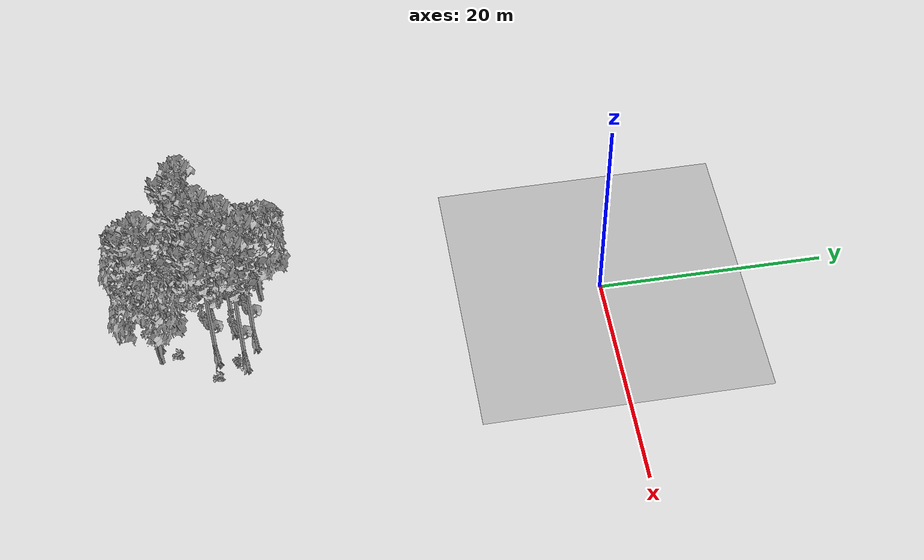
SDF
<sdf version="1.7">
 <world name="default">
  <model name="ground_plane">
   <static>1</static>
   <link name="link">
    <collision name="collision">
     <pose>-50 0 0 0 -0 0</pose>
     <geometry><plane><normal>0 0 1</normal><size>80 80</size></plane></geometry>
     <surface><contact><ode><min_depth>0.01</min_depth><max_vel>0</max_vel></ode></contact></surface>
    </collision>
    <visual name="grass">
     <cast_shadows>0</cast_shadows>
     <geometry>
      <mesh>
       <scale>0.46714285714285714 0.46714285714285714 0.1</scale>
       <uri>file://grass_plane/meshes/grass_plane.dae</uri>
      </mesh>
     </geometry>
    </visual>
   </link>
  </model>
  <model name="Tree 138">
   <static>1</static>
   <pose>1.7943617229306597 -38.684852721936664 0 1.57079 -0 0</pose>
   <link name="link">
    <collision name="collision">
     <geometry><mesh><scale>3.5 5 3.5</scale><uri>model://tree_2/meshes/tree_2.obj</uri></mesh></geometry>
    </collision>
    <visual name="visual">
     <geometry><mesh><scale>3.5 5 3.5</scale><uri>model://tree_2/meshes/tree_2.obj</uri></mesh></geometry>
    </visual>
   </link>
  </model>
  <model name="Tree 186">
   <static>1</static>
   <pose>1.4371979365875873 -30.614723685565277 0 1.57079 -0 0</pose>
   <link name="link">
    <collision name="collision">
     <geometry><mesh><scale>3.5 5 3.5</scale><uri>model://tree_9/meshes/tree_9.obj</uri></mesh></geometry>
    </collision>
    <visual name="visual">
     <geometry><mesh><scale>3.5 5 3.5</scale><uri>model://tree_9/meshes/tree_9.obj</uri></mesh></geometry>
    </visual>
   </link>
  </model>
  <model name="Tree 195">
   <static>1</static>
   <pose>2.5169515517451586 -33.959013558697386 0 1.57079 -0 0</pose>
   <link name="link">
    <collision name="collision">
     <geometry><mesh><scale>3.5 5 3.5</scale><uri>model://tree_9/meshes/tree_9.obj</uri></mesh></geometry>
    </collision>
    <visual name="visual">
     <geometry><mesh><scale>3.5 5 3.5</scale><uri>model://tree_9/meshes/tree_9.obj</uri></mesh></geometry>
    </visual>
   </link>
  </model>
  <model name="Tree 231">
   <static>1</static>
   <pose>-3.1194249024123764 -38.041849336431824 0 1.57079 -0 0</pose>
   <link name="link">
    <collision name="collision">
     <geometry><mesh><scale>3.5 5 3.5</scale><uri>model://tree_2/meshes/tree_2.obj</uri></mesh></geometry>
    </collision>
    <visual name="visual">
     <geometry><mesh><scale>3.5 5 3.5</scale><uri>model://tree_2/meshes/tree_2.obj</uri></mesh></geometry>
    </visual>
   </link>
  </model>
  <model name="Tree 291">
   <static>1</static>
   <pose>-3.576647384000559 -29.745090943464454 0 1.57079 -0 0</pose>
   <link name="link">
    <collision name="collision">
     <geometry><mesh><scale>3.5 5 3.5</scale><uri>model://tree_2/meshes/tree_2.obj</uri></mesh></geometry>
    </collision>
    <visual name="visual">
     <geometry><mesh><scale>3.5 5 3.5</scale><uri>model://tree_2/meshes/tree_2.obj</uri></mesh></geometry>
    </visual>
   </link>
  </model>
  <model name="Tree 363">
   <static>1</static>
   <pose>3.5125473763168245 -31.584496098964205 0 1.57079 -0 0</pose>
   <link name="link">
    <collision name="collision">
     <geometry><mesh><scale>3.5 5 3.5</scale><uri>model://tree_9/meshes/tree_9.obj</uri></mesh></geometry>
    </collision>
    <visual name="visual">
     <geometry><mesh><scale>3.5 5 3.5</scale><uri>model://tree_9/meshes/tree_9.obj</uri></mesh></geometry>
    </visual>
   </link>
  </model>
  <model name="Tree 407">
   <static>1</static>
   <pose>0.25082782474779464 -38.77463887626775 0 1.57079 -0 0</pose>
   <link name="link">
    <collision name="collision">
     <geometry><mesh><scale>3.5 5 3.5</scale><uri>model://tree_9/meshes/tree_9.obj</uri></mesh></geometry>
    </collision>
    <visual name="visual">
     <geometry><mesh><scale>3.5 5 3.5</scale><uri>model://tree_9/meshes/tree_9.obj</uri></mesh></geometry>
    </visual>
   </link>
  </model>
  <model name="Tree 412">
   <static>1</static>
   <pose>-0.38117350159099317 -32.30412741928206 0 1.57079 -0 0</pose>
   <link name="link">
    <collision name="collision">
     <geometry><mesh><scale>3.5 5 3.5</scale><uri>model://tree_9/meshes/tree_9.obj</uri></mesh></geometry>
    </collision>
    <visual name="visual">
     <geometry><mesh><scale>3.5 5 3.5</scale><uri>model://tree_9/meshes/tree_9.obj</uri></mesh></geometry>
    </visual>
   </link>
  </model>
  <model name="Tree 455">
   <static>1</static>
   <pose>-3.2909827842340107 -39.282722049232376 0 1.57079 -0 0</pose>
   <link name="link">
    <collision name="collision">
     <geometry><mesh><scale>3.5 5 3.5</scale><uri>model://tree_2/meshes/tree_2.obj</uri></mesh></geometry>
    </collision>
    <visual name="visual">
     <geometry><mesh><scale>3.5 5 3.5</scale><uri>model://tree_2/meshes/tree_2.obj</uri></mesh></geometry>
    </visual>
   </link>
  </model>
  <model name="Tree 476">
   <static>1</static>
   <pose>-1.7045935388941942 -34.08110922287391 0 1.57079 -0 0</pose>
   <link name="link">
    <collision name="collision">
     <geometry><mesh><scale>3.5 5 3.5</scale><uri>model://tree_9/meshes/tree_9.obj</uri></mesh></geometry>
    </collision>
    <visual name="visual">
     <geometry><mesh><scale>3.5 5 3.5</scale><uri>model://tree_9/meshes/tree_9.obj</uri></mesh></geometry>
    </visual>
   </link>
  </model>
  <model name="Tree 548">
   <static>1</static>
   <pose>-3.480218419004686 -31.627936309444856 0 1.57079 -0 0</pose>
   <link name="link">
    <collision name="collision">
     <geometry><mesh><scale>3.5 5 3.5</scale><uri>model://tree_2/meshes/tree_2.obj</uri></mesh></geometry>
    </collision>
    <visual name="visual">
     <geometry><mesh><scale>3.5 5 3.5</scale><uri>model://tree_2/meshes/tree_2.obj</uri></mesh></geometry>
    </visual>
   </link>
  </model>
  <model name="Tree 603">
   <static>1</static>
   <pose>-5.125138345340609 -35.245219344497016 0 1.57079 -0 0</pose>
   <link name="link">
    <collision name="collision">
     <geometry><mesh><scale>3.5 5 3.5</scale><uri>model://tree_9/meshes/tree_9.obj</uri></mesh></geometry>
    </collision>
    <visual name="visual">
     <geometry><mesh><scale>3.5 5 3.5</scale><uri>model://tree_9/meshes/tree_9.obj</uri></mesh></geometry>
    </visual>
   </link>
  </model>
  <model name="Bush 20">
   <static>1</static>
   <pose>-5.391037884607108 -32.40212075155192 0 1.57079 -0 0</pose>
   <link name="link">
    <collision name="collision">
     <geometry><mesh><scale>2 2 2</scale><uri>model://bush_2/meshes/bush_2.obj</uri></mesh></geometry>
     <surface><contact><collide_without_contact>false</collide_without_contact></contact></surface>
    </collision>
    <visual name="visual">
     <geometry><mesh><scale>2 2 2</scale><uri>model://bush_2/meshes/bush_2.obj</uri></mesh></geometry>
    </visual>
   </link>
  </model>
  <model name="Bush 43">
   <static>1</static>
   <pose>4.136867577311904 -34.044890382032655 0 1.57079 -0 0</pose>
   <link name="link">
    <collision name="collision">
     <geometry><mesh><scale>2 2 2</scale><uri>model://bush_2/meshes/bush_2.obj</uri></mesh></geometry>
     <surface><contact><collide_without_contact>false</collide_without_contact></contact></surface>
    </collision>
    <visual name="visual">
     <geometry><mesh><scale>2 2 2</scale><uri>model://bush_2/meshes/bush_2.obj</uri></mesh></geometry>
    </visual>
   </link>
  </model>
  <model name="Bush 50">
   <static>1</static>
   <pose>1.2861811846438727 -37.29976834700458 0 1.57079 -0 0</pose>
   <link name="link">
    <collision name="collision">
     <geometry><mesh><scale>2 2 2</scale><uri>model://bush_2/meshes/bush_2.obj</uri></mesh></geometry>
     <surface><contact><collide_without_contact>false</collide_without_contact></contact></surface>
    </collision>
    <visual name="visual">
     <geometry><mesh><scale>2 2 2</scale><uri>model://bush_2/meshes/bush_2.obj</uri></mesh></geometry>
    </visual>
   </link>
  </model>
  <model name="Bush 67">
   <static>1</static>
   <pose>-5.08326398577767 -29.90954772202448 0 1.57079 -0 0</pose>
   <link name="link">
    <collision name="collision">
     <geometry><mesh><scale>2 2 2</scale><uri>model://bush_2/meshes/bush_2.obj</uri></mesh></geometry>
     <surface><contact><collide_without_contact>false</collide_without_contact></contact></surface>
    </collision>
    <visual name="visual">
     <geometry><mesh><scale>2 2 2</scale><uri>model://bush_2/meshes/bush_2.obj</uri></mesh></geometry>
    </visual>
   </link>
  </model>
  <model name="Bush 185">
   <static>1</static>
   <pose>-0.4148620533965399 -39.40769959942166 0 1.57079 -0 0</pose>
   <link name="link">
    <collision name="collision">
     <geometry><mesh><scale>2 2 2</scale><uri>model://bush_5/meshes/bush_5.obj</uri></mesh></geometry>
     <surface><contact><collide_without_contact>false</collide_without_contact></contact></surface>
    </collision>
    <visual name="visual">
     <geometry><mesh><scale>2 2 2</scale><uri>model://bush_5/meshes/bush_5.obj</uri></mesh></geometry>
    </visual>
   </link>
  </model>
  <model name="Bush 210">
   <static>1</static>
   <pose>-3.444910187718534 -36.03276516631156 0 1.57079 -0 0</pose>
   <link name="link">
    <collision name="collision">
     <geometry><mesh><scale>2 2 2</scale><uri>model://bush_1/meshes/bush_1.obj</uri></mesh></geometry>
     <surface><contact><collide_without_contact>false</collide_without_contact></contact></surface>
    </collision>
    <visual name="visual">
     <geometry><mesh><scale>2 2 2</scale><uri>model://bush_1/meshes/bush_1.obj</uri></mesh></geometry>
    </visual>
   </link>
  </model>
  <model name="Bush 246">
   <static>1</static>
   <pose>-3.9856331903191915 -36.523333344151524 0 1.57079 -0 0</pose>
   <link name="link">
    <collision name="collision">
     <geometry><mesh><scale>2 2 2</scale><uri>model://bush_2/meshes/bush_2.obj</uri></mesh></geometry>
     <surface><contact><collide_without_contact>false</collide_without_contact></contact></surface>
    </collision>
    <visual name="visual">
     <geometry><mesh><scale>2 2 2</scale><uri>model://bush_2/meshes/bush_2.obj</uri></mesh></geometry>
    </visual>
   </link>
  </model>
  <model name="Bush 467">
   <static>1</static>
   <pose>3.3937425430430608 -32.21815623492973 0 1.57079 -0 0</pose>
   <link name="link">
    <collision name="collision">
     <geometry><mesh><scale>2 2 2</scale><uri>model://bush_4/meshes/bush_4.obj</uri></mesh></geometry>
     <surface><contact><collide_without_contact>false</collide_without_contact></contact></surface>
    </collision>
    <visual name="visual">
     <geometry><mesh><scale>2 2 2</scale><uri>model://bush_4/meshes/bush_4.obj</uri></mesh></geometry>
    </visual>
   </link>
  </model>
  <model name="Bush 468">
   <static>1</static>
   <pose>-1.5252001121887986 -39.43564605446767 0 1.57079 -0 0</pose>
   <link name="link">
    <collision name="collision">
     <geometry><mesh><scale>2 2 2</scale><uri>model://bush_5/meshes/bush_5.obj</uri></mesh></geometry>
     <surface><contact><collide_without_contact>false</collide_without_contact></contact></surface>
    </collision>
    <visual name="visual">
     <geometry><mesh><scale>2 2 2</scale><uri>model://bush_5/meshes/bush_5.obj</uri></mesh></geometry>
    </visual>
   </link>
  </model>
  <model name="Bush 472">
   <static>1</static>
   <pose>-2.315694803541419 -34.66370498061675 0 1.57079 -0 0</pose>
   <link name="link">
    <collision name="collision">
     <geometry><mesh><scale>2 2 2</scale><uri>model://bush_2/meshes/bush_2.obj</uri></mesh></geometry>
     <surface><contact><collide_without_contact>false</collide_without_contact></contact></surface>
    </collision>
    <visual name="visual">
     <geometry><mesh><scale>2 2 2</scale><uri>model://bush_2/meshes/bush_2.obj</uri></mesh></geometry>
    </visual>
   </link>
  </model>
  <model name="Bush 635">
   <static>1</static>
   <pose>-4.885594501617611 -38.48068048516768 0 1.57079 -0 0</pose>
   <link name="link">
    <collision name="collision">
     <geometry><mesh><scale>2 2 2</scale><uri>model://bush_2/meshes/bush_2.obj</uri></mesh></geometry>
     <surface><contact><collide_without_contact>false</collide_without_contact></contact></surface>
    </collision>
    <visual name="visual">
     <geometry><mesh><scale>2 2 2</scale><uri>model://bush_2/meshes/bush_2.obj</uri></mesh></geometry>
    </visual>
   </link>
  </model>
 </world>
</sdf>
